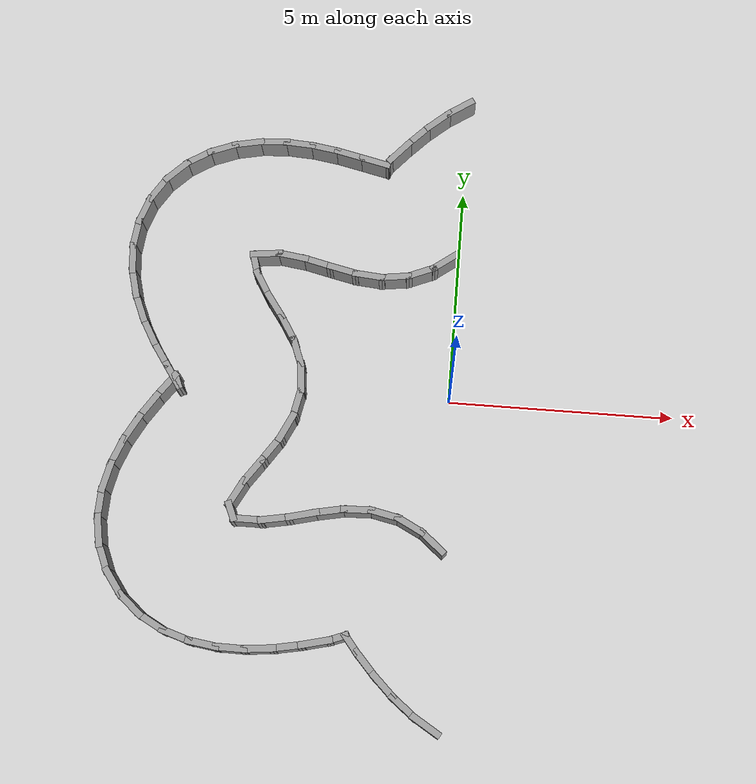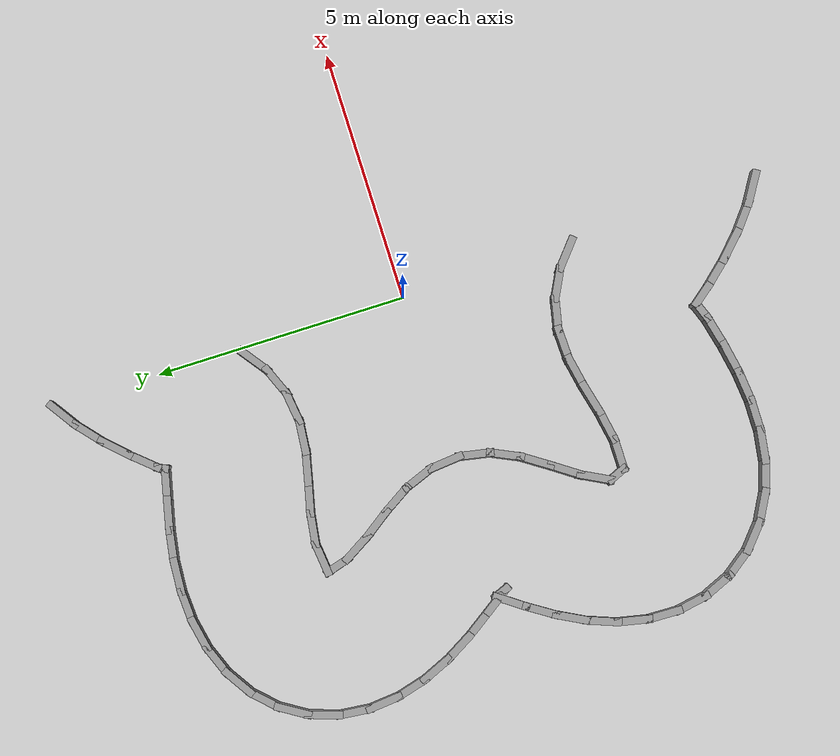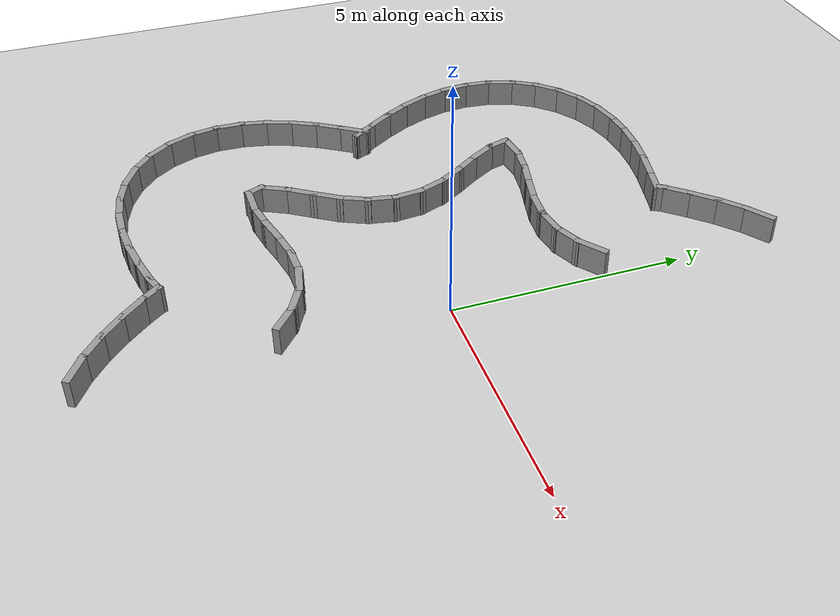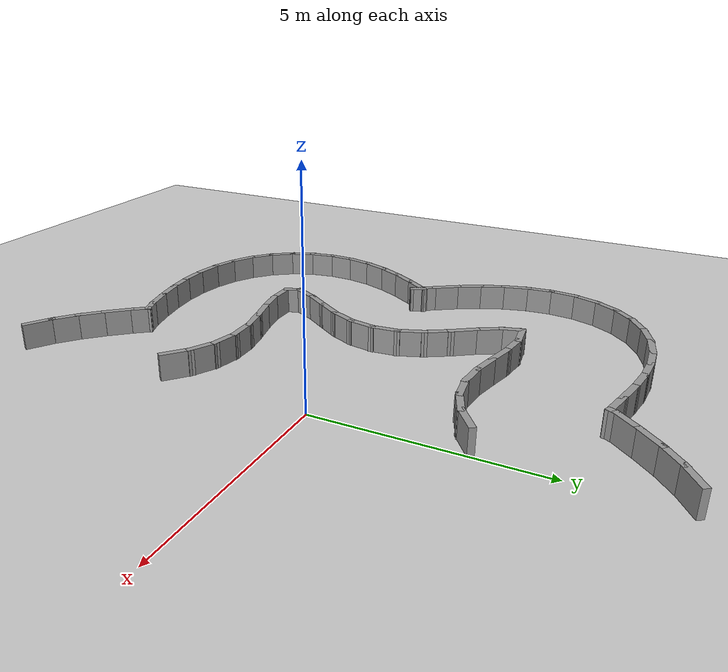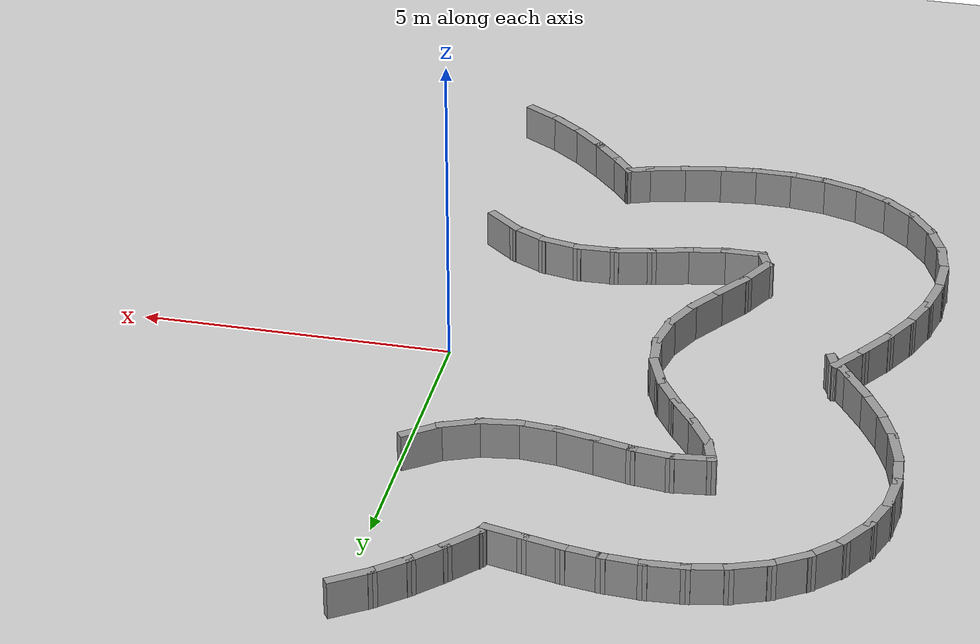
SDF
<sdf version="1.7">
 <world name="default">
  <model name="ground_plane">
   <static>1</static>
   <link name="link">
    <collision name="collision">
     <geometry><plane><normal>0 0 1</normal><size>100 100</size></plane></geometry>
     <surface><friction><ode><mu>100</mu><mu2>50</mu2></ode></friction></surface>
    </collision>
    <visual name="visual">
     <cast_shadows>0</cast_shadows>
     <geometry><plane><normal>0 0 1</normal><size>100 100</size></plane></geometry>
     <material>
      <script><uri>file://media/materials/scripts/gazebo.material</uri><name>Gazebo/Grey</name></script>
     </material>
    </visual>
   </link>
  </model>
  <model name="rand_lobed_02">
   <link name="Wall_16">
    <collision name="Wall_16_Collision">
     <geometry><box><size>0.7488 0.1500 0.6000</size></box></geometry>
     <pose>0 0 0.3000 0 -0 0</pose>
    </collision>
    <visual name="Wall_16_Visual">
     <pose>0 0 0.3000 0 -0 0</pose>
     <geometry><box><size>0.7488 0.1500 0.6000</size></box></geometry>
     <material>
      <script><uri>file://media/materials/scripts/gazebo.material</uri><name>Gazebo/Grey</name></script>
      <ambient>1 1 1 1</ambient>
     </material>
    </visual>
    <pose>-0.3218 3.1370 0 0 -0 -2.50682</pose>
   </link>
   <link name="Wall_17">
    <collision name="Wall_17_Collision">
     <geometry><box><size>0.7483 0.1500 0.6000</size></box></geometry>
     <pose>0 0 0.3000 0 -0 0</pose>
    </collision>
    <visual name="Wall_17_Visual">
     <pose>0 0 0.3000 0 -0 0</pose>
     <geometry><box><size>0.7483 0.1500 0.6000</size></box></geometry>
     <material>
      <script><uri>file://media/materials/scripts/gazebo.material</uri><name>Gazebo/Grey</name></script>
      <ambient>1 1 1 1</ambient>
     </material>
    </visual>
    <pose>-0.8395 2.8456 0 0 -0 -2.75114</pose>
   </link>
   <link name="Wall_18">
    <collision name="Wall_18_Collision">
     <geometry><box><size>0.7484 0.1500 0.6000</size></box></geometry>
     <pose>0 0 0.3000 0 -0 0</pose>
    </collision>
    <visual name="Wall_18_Visual">
     <pose>0 0 0.3000 0 -0 0</pose>
     <geometry><box><size>0.7484 0.1500 0.6000</size></box></geometry>
     <material>
      <script><uri>file://media/materials/scripts/gazebo.material</uri><name>Gazebo/Grey</name></script>
      <ambient>1 1 1 1</ambient>
     </material>
    </visual>
    <pose>-1.4128 2.6932 0 0 -0 -3.01212</pose>
   </link>
   <link name="Wall_19">
    <collision name="Wall_19_Collision">
     <geometry><box><size>0.7491 0.1500 0.6000</size></box></geometry>
     <pose>0 0 0.3000 0 -0 0</pose>
    </collision>
    <visual name="Wall_19_Visual">
     <pose>0 0 0.3000 0 -0 0</pose>
     <geometry><box><size>0.7491 0.1500 0.6000</size></box></geometry>
     <material>
      <script><uri>file://media/materials/scripts/gazebo.material</uri><name>Gazebo/Grey</name></script>
      <ambient>1 1 1 1</ambient>
     </material>
    </visual>
    <pose>-2.0077 2.6823 0 0 -0 3.04875</pose>
   </link>
   <link name="Wall_20">
    <collision name="Wall_20_Collision">
     <geometry><box><size>0.7499 0.1500 0.6000</size></box></geometry>
     <pose>0 0 0.3000 0 -0 0</pose>
    </collision>
    <visual name="Wall_20_Visual">
     <pose>0 0 0.3000 0 -0 0</pose>
     <geometry><box><size>0.7499 0.1500 0.6000</size></box></geometry>
     <material>
      <script><uri>file://media/materials/scripts/gazebo.material</uri><name>Gazebo/Grey</name></script>
      <ambient>1 1 1 1</ambient>
     </material>
    </visual>
    <pose>-2.5986 2.7760 0 0 -0 2.92006</pose>
   </link>
   <link name="Wall_21">
    <collision name="Wall_21_Collision">
     <geometry><box><size>0.7500 0.1500 0.6000</size></box></geometry>
     <pose>0 0 0.3000 0 -0 0</pose>
    </collision>
    <visual name="Wall_21_Visual">
     <pose>0 0 0.3000 0 -0 0</pose>
     <geometry><box><size>0.7500 0.1500 0.6000</size></box></geometry>
     <material>
      <script><uri>file://media/materials/scripts/gazebo.material</uri><name>Gazebo/Grey</name></script>
      <ambient>1 1 1 1</ambient>
     </material>
    </visual>
    <pose>-3.1830 2.9114 0 0 -0 2.90779</pose>
   </link>
   <link name="Wall_22">
    <collision name="Wall_22_Collision">
     <geometry><box><size>0.7495 0.1500 0.6000</size></box></geometry>
     <pose>0 0 0.3000 0 -0 0</pose>
    </collision>
    <visual name="Wall_22_Visual">
     <pose>0 0 0.3000 0 -0 0</pose>
     <geometry><box><size>0.7495 0.1500 0.6000</size></box></geometry>
     <material>
      <script><uri>file://media/materials/scripts/gazebo.material</uri><name>Gazebo/Grey</name></script>
      <ambient>1 1 1 1</ambient>
     </material>
    </visual>
    <pose>-3.7716 3.0230 0 0 -0 3.00070</pose>
   </link>
   <link name="Wall_23">
    <collision name="Wall_23_Collision">
     <geometry><box><size>0.7453 0.1500 0.6000</size></box></geometry>
     <pose>0 0 0.3000 0 -0 0</pose>
    </collision>
    <visual name="Wall_23_Visual">
     <pose>0 0 0.3000 0 -0 0</pose>
     <geometry><box><size>0.7453 0.1500 0.6000</size></box></geometry>
     <material>
      <script><uri>file://media/materials/scripts/gazebo.material</uri><name>Gazebo/Grey</name></script>
      <ambient>1 1 1 1</ambient>
     </material>
    </visual>
    <pose>-4.3642 3.0321 0 0 -0 -3.03064</pose>
   </link>
   <link name="Wall_24">
    <collision name="Wall_24_Collision">
     <geometry><box><size>0.5952 0.1500 0.6000</size></box></geometry>
     <pose>0 0 0.3000 0 -0 0</pose>
    </collision>
    <visual name="Wall_24_Visual">
     <pose>0 0 0.3000 0 -0 0</pose>
     <geometry><box><size>0.5952 0.1500 0.6000</size></box></geometry>
     <material>
      <script><uri>file://media/materials/scripts/gazebo.material</uri><name>Gazebo/Grey</name></script>
      <ambient>1 1 1 1</ambient>
     </material>
    </visual>
    <pose>-4.5961 2.7860 0 0 -0 -1.27937</pose>
   </link>
   <link name="Wall_25">
    <collision name="Wall_25_Collision">
     <geometry><box><size>0.7494 0.1500 0.6000</size></box></geometry>
     <pose>0 0 0.3000 0 -0 0</pose>
    </collision>
    <visual name="Wall_25_Visual">
     <pose>0 0 0.3000 0 -0 0</pose>
     <geometry><box><size>0.7494 0.1500 0.6000</size></box></geometry>
     <material>
      <script><uri>file://media/materials/scripts/gazebo.material</uri><name>Gazebo/Grey</name></script>
      <ambient>1 1 1 1</ambient>
     </material>
    </visual>
    <pose>-4.3782 2.3156 0 0 -0 -1.03138</pose>
   </link>
   <link name="Wall_26">
    <collision name="Wall_26_Collision">
     <geometry><box><size>0.7500 0.1500 0.6000</size></box></geometry>
     <pose>0 0 0.3000 0 -0 0</pose>
    </collision>
    <visual name="Wall_26_Visual">
     <pose>0 0 0.3000 0 -0 0</pose>
     <geometry><box><size>0.7500 0.1500 0.6000</size></box></geometry>
     <material>
      <script><uri>file://media/materials/scripts/gazebo.material</uri><name>Gazebo/Grey</name></script>
      <ambient>1 1 1 1</ambient>
     </material>
    </visual>
    <pose>-4.0508 1.8137 0 0 -0 -0.95438</pose>
   </link>
   <link name="Wall_27">
    <collision name="Wall_27_Collision">
     <geometry><box><size>0.7496 0.1500 0.6000</size></box></geometry>
     <pose>0 0 0.3000 0 -0 0</pose>
    </collision>
    <visual name="Wall_27_Visual">
     <pose>0 0 0.3000 0 -0 0</pose>
     <geometry><box><size>0.7496 0.1500 0.6000</size></box></geometry>
     <material>
      <script><uri>file://media/materials/scripts/gazebo.material</uri><name>Gazebo/Grey</name></script>
      <ambient>1 1 1 1</ambient>
     </material>
    </visual>
    <pose>-3.7194 1.3141 0 0 -0 -1.01584</pose>
   </link>
   <link name="Wall_28">
    <collision name="Wall_28_Collision">
     <geometry><box><size>0.7486 0.1500 0.6000</size></box></geometry>
     <pose>0 0 0.3000 0 -0 0</pose>
    </collision>
    <visual name="Wall_28_Visual">
     <pose>0 0 0.3000 0 -0 0</pose>
     <geometry><box><size>0.7486 0.1500 0.6000</size></box></geometry>
     <material>
      <script><uri>file://media/materials/scripts/gazebo.material</uri><name>Gazebo/Grey</name></script>
      <ambient>1 1 1 1</ambient>
     </material>
    </visual>
    <pose>-3.4545 0.7798 0 0 -0 -1.20536</pose>
   </link>
   <link name="Wall_29">
    <collision name="Wall_29_Collision">
     <geometry><box><size>0.7479 0.1500 0.6000</size></box></geometry>
     <pose>0 0 0.3000 0 -0 0</pose>
    </collision>
    <visual name="Wall_29_Visual">
     <pose>0 0 0.3000 0 -0 0</pose>
     <geometry><box><size>0.7479 0.1500 0.6000</size></box></geometry>
     <material>
      <script><uri>file://media/materials/scripts/gazebo.material</uri><name>Gazebo/Grey</name></script>
      <ambient>1 1 1 1</ambient>
     </material>
    </visual>
    <pose>-3.3183 0.2027 0 0 -0 -1.47272</pose>
   </link>
   <link name="Wall_30">
    <collision name="Wall_30_Collision">
     <geometry><box><size>0.7480 0.1500 0.6000</size></box></geometry>
     <pose>0 0 0.3000 0 -0 0</pose>
    </collision>
    <visual name="Wall_30_Visual">
     <pose>0 0 0.3000 0 -0 0</pose>
     <geometry><box><size>0.7480 0.1500 0.6000</size></box></geometry>
     <material>
      <script><uri>file://media/materials/scripts/gazebo.material</uri><name>Gazebo/Grey</name></script>
      <ambient>1 1 1 1</ambient>
     </material>
    </visual>
    <pose>-3.3446 -0.3886 0 0 -0 -1.75793</pose>
   </link>
   <link name="Wall_31">
    <collision name="Wall_31_Collision">
     <geometry><box><size>0.7489 0.1500 0.6000</size></box></geometry>
     <pose>0 0 0.3000 0 -0 0</pose>
    </collision>
    <visual name="Wall_31_Visual">
     <pose>0 0 0.3000 0 -0 0</pose>
     <geometry><box><size>0.7489 0.1500 0.6000</size></box></geometry>
     <material>
      <script><uri>file://media/materials/scripts/gazebo.material</uri><name>Gazebo/Grey</name></script>
      <ambient>1 1 1 1</ambient>
     </material>
    </visual>
    <pose>-3.5269 -0.9537 0 0 -0 -2.00754</pose>
   </link>
   <link name="Wall_32">
    <collision name="Wall_32_Collision">
     <geometry><box><size>0.7498 0.1500 0.6000</size></box></geometry>
     <pose>0 0 0.3000 0 -0 0</pose>
    </collision>
    <visual name="Wall_32_Visual">
     <pose>0 0 0.3000 0 -0 0</pose>
     <geometry><box><size>0.7498 0.1500 0.6000</size></box></geometry>
     <material>
      <script><uri>file://media/materials/scripts/gazebo.material</uri><name>Gazebo/Grey</name></script>
      <ambient>1 1 1 1</ambient>
     </material>
    </visual>
    <pose>-3.8203 -1.4743 0 0 -0 -2.16019</pose>
   </link>
   <link name="Wall_33">
    <collision name="Wall_33_Collision">
     <geometry><box><size>0.7499 0.1500 0.6000</size></box></geometry>
     <pose>0 0 0.3000 0 -0 0</pose>
    </collision>
    <visual name="Wall_33_Visual">
     <pose>0 0 0.3000 0 -0 0</pose>
     <geometry><box><size>0.7499 0.1500 0.6000</size></box></geometry>
     <material>
      <script><uri>file://media/materials/scripts/gazebo.material</uri><name>Gazebo/Grey</name></script>
      <ambient>1 1 1 1</ambient>
     </material>
    </visual>
    <pose>-4.1581 -1.9700 0 0 -0 -2.17801</pose>
   </link>
   <link name="Wall_34">
    <collision name="Wall_34_Collision">
     <geometry><box><size>0.7488 0.1500 0.6000</size></box></geometry>
     <pose>0 0 0.3000 0 -0 0</pose>
    </collision>
    <visual name="Wall_34_Visual">
     <pose>0 0 0.3000 0 -0 0</pose>
     <geometry><box><size>0.7488 0.1500 0.6000</size></box></geometry>
     <material>
      <script><uri>file://media/materials/scripts/gazebo.material</uri><name>Gazebo/Grey</name></script>
      <ambient>1 1 1 1</ambient>
     </material>
    </visual>
    <pose>-4.4678 -2.4818 0 0 -0 -2.05165</pose>
   </link>
   <link name="Wall_35">
    <collision name="Wall_35_Collision">
     <geometry><box><size>0.4783 0.1500 0.6000</size></box></geometry>
     <pose>0 0 0.3000 0 -0 0</pose>
    </collision>
    <visual name="Wall_35_Visual">
     <pose>0 0 0.3000 0 -0 0</pose>
     <geometry><box><size>0.4783 0.1500 0.6000</size></box></geometry>
     <material>
      <script><uri>file://media/materials/scripts/gazebo.material</uri><name>Gazebo/Grey</name></script>
      <ambient>1 1 1 1</ambient>
     </material>
    </visual>
    <pose>-4.5419 -2.8983 0 0 -0 -1.16822</pose>
   </link>
   <link name="Wall_36">
    <collision name="Wall_36_Collision">
     <geometry><box><size>0.7481 0.1500 0.6000</size></box></geometry>
     <pose>0 0 0.3000 0 -0 0</pose>
    </collision>
    <visual name="Wall_36_Visual">
     <pose>0 0 0.3000 0 -0 0</pose>
     <geometry><box><size>0.7481 0.1500 0.6000</size></box></geometry>
     <material>
      <script><uri>file://media/materials/scripts/gazebo.material</uri><name>Gazebo/Grey</name></script>
      <ambient>1 1 1 1</ambient>
     </material>
    </visual>
    <pose>-4.1786 -3.0488 0 0 -0 0.00166</pose>
   </link>
   <link name="Wall_37">
    <collision name="Wall_37_Collision">
     <geometry><box><size>0.7497 0.1500 0.6000</size></box></geometry>
     <pose>0 0 0.3000 0 -0 0</pose>
    </collision>
    <visual name="Wall_37_Visual">
     <pose>0 0 0.3000 0 -0 0</pose>
     <geometry><box><size>0.7497 0.1500 0.6000</size></box></geometry>
     <material>
      <script><uri>file://media/materials/scripts/gazebo.material</uri><name>Gazebo/Grey</name></script>
      <ambient>1 1 1 1</ambient>
     </material>
    </visual>
    <pose>-3.5846 -2.9942 0 0 -0 0.18162</pose>
   </link>
   <link name="Wall_38">
    <collision name="Wall_38_Collision">
     <geometry><box><size>0.7500 0.1500 0.6000</size></box></geometry>
     <pose>0 0 0.3000 0 -0 0</pose>
    </collision>
    <visual name="Wall_38_Visual">
     <pose>0 0 0.3000 0 -0 0</pose>
     <geometry><box><size>0.7500 0.1500 0.6000</size></box></geometry>
     <material>
      <script><uri>file://media/materials/scripts/gazebo.material</uri><name>Gazebo/Grey</name></script>
      <ambient>1 1 1 1</ambient>
     </material>
    </visual>
    <pose>-2.9984 -2.8681 0 0 -0 0.24187</pose>
   </link>
   <link name="Wall_39">
    <collision name="Wall_39_Collision">
     <geometry><box><size>0.7497 0.1500 0.6000</size></box></geometry>
     <pose>0 0 0.3000 0 -0 0</pose>
    </collision>
    <visual name="Wall_39_Visual">
     <pose>0 0 0.3000 0 -0 0</pose>
     <geometry><box><size>0.7497 0.1500 0.6000</size></box></geometry>
     <material>
      <script><uri>file://media/materials/scripts/gazebo.material</uri><name>Gazebo/Grey</name></script>
      <ambient>1 1 1 1</ambient>
     </material>
    </visual>
    <pose>-2.4129 -2.7387 0 0 -0 0.19341</pose>
   </link>
   <link name="Wall_40">
    <collision name="Wall_40_Collision">
     <geometry><box><size>0.7489 0.1500 0.6000</size></box></geometry>
     <pose>0 0 0.3000 0 -0 0</pose>
    </collision>
    <visual name="Wall_40_Visual">
     <pose>0 0 0.3000 0 -0 0</pose>
     <geometry><box><size>0.7489 0.1500 0.6000</size></box></geometry>
     <material>
      <script><uri>file://media/materials/scripts/gazebo.material</uri><name>Gazebo/Grey</name></script>
      <ambient>1 1 1 1</ambient>
     </material>
    </visual>
    <pose>-1.8193 -2.6720 0 0 -0 0.03029</pose>
   </link>
   <link name="Wall_41">
    <collision name="Wall_41_Collision">
     <geometry><box><size>0.7483 0.1500 0.6000</size></box></geometry>
     <pose>0 0 0.3000 0 -0 0</pose>
    </collision>
    <visual name="Wall_41_Visual">
     <pose>0 0 0.3000 0 -0 0</pose>
     <geometry><box><size>0.7483 0.1500 0.6000</size></box></geometry>
     <material>
      <script><uri>file://media/materials/scripts/gazebo.material</uri><name>Gazebo/Grey</name></script>
      <ambient>1 1 1 1</ambient>
     </material>
    </visual>
    <pose>-1.2275 -2.7254 0 0 -0 -0.21041</pose>
   </link>
   <link name="Wall_42">
    <collision name="Wall_42_Collision">
     <geometry><box><size>0.7484 0.1500 0.6000</size></box></geometry>
     <pose>0 0 0.3000 0 -0 0</pose>
    </collision>
    <visual name="Wall_42_Visual">
     <pose>0 0 0.3000 0 -0 0</pose>
     <geometry><box><size>0.7484 0.1500 0.6000</size></box></geometry>
     <material>
      <script><uri>file://media/materials/scripts/gazebo.material</uri><name>Gazebo/Grey</name></script>
      <ambient>1 1 1 1</ambient>
     </material>
    </visual>
    <pose>-0.6685 -2.9239 0 0 -0 -0.47214</pose>
   </link>
   <link name="Wall_43">
    <collision name="Wall_43_Collision">
     <geometry><box><size>0.7491 0.1500 0.6000</size></box></geometry>
     <pose>0 0 0.3000 0 -0 0</pose>
    </collision>
    <visual name="Wall_43_Visual">
     <pose>0 0 0.3000 0 -0 0</pose>
     <geometry><box><size>0.7491 0.1500 0.6000</size></box></geometry>
     <material>
      <script><uri>file://media/materials/scripts/gazebo.material</uri><name>Gazebo/Grey</name></script>
      <ambient>1 1 1 1</ambient>
     </material>
    </visual>
    <pose>-0.1728 -3.2527 0 0 -0 -0.69901</pose>
   </link>
   <link name="Wall_82">
    <collision name="Wall_82_Collision">
     <geometry><box><size>0.7496 0.1500 0.6000</size></box></geometry>
     <pose>0 0 0.3000 0 -0 0</pose>
    </collision>
    <visual name="Wall_82_Visual">
     <pose>0 0 0.3000 0 -0 0</pose>
     <geometry><box><size>0.7496 0.1500 0.6000</size></box></geometry>
     <material>
      <script><uri>file://media/materials/scripts/gazebo.material</uri><name>Gazebo/Grey</name></script>
      <ambient>1 1 1 1</ambient>
     </material>
    </visual>
    <pose>-0.2195 6.9723 0 0 -0 -2.54758</pose>
   </link>
   <link name="Wall_83">
    <collision name="Wall_83_Collision">
     <geometry><box><size>0.7497 0.1500 0.6000</size></box></geometry>
     <pose>0 0 0.3000 0 -0 0</pose>
    </collision>
    <visual name="Wall_83_Visual">
     <pose>0 0 0.3000 0 -0 0</pose>
     <geometry><box><size>0.7497 0.1500 0.6000</size></box></geometry>
     <material>
      <script><uri>file://media/materials/scripts/gazebo.material</uri><name>Gazebo/Grey</name></script>
      <ambient>1 1 1 1</ambient>
     </material>
    </visual>
    <pose>-0.6953 6.6090 0 0 -0 -2.43151</pose>
   </link>
   <link name="Wall_84">
    <collision name="Wall_84_Collision">
     <geometry><box><size>0.7499 0.1500 0.6000</size></box></geometry>
     <pose>0 0 0.3000 0 -0 0</pose>
    </collision>
    <visual name="Wall_84_Visual">
     <pose>0 0 0.3000 0 -0 0</pose>
     <geometry><box><size>0.7499 0.1500 0.6000</size></box></geometry>
     <material>
      <script><uri>file://media/materials/scripts/gazebo.material</uri><name>Gazebo/Grey</name></script>
      <ambient>1 1 1 1</ambient>
     </material>
    </visual>
    <pose>-1.1317 6.1984 0 0 -0 -2.34160</pose>
   </link>
   <link name="Wall_85">
    <collision name="Wall_85_Collision">
     <geometry><box><size>0.7500 0.1500 0.6000</size></box></geometry>
     <pose>0 0 0.3000 0 -0 0</pose>
    </collision>
    <visual name="Wall_85_Visual">
     <pose>0 0 0.3000 0 -0 0</pose>
     <geometry><box><size>0.7500 0.1500 0.6000</size></box></geometry>
     <material>
      <script><uri>file://media/materials/scripts/gazebo.material</uri><name>Gazebo/Grey</name></script>
      <ambient>1 1 1 1</ambient>
     </material>
    </visual>
    <pose>-1.5391 5.7582 0 0 -0 -2.29342</pose>
   </link>
   <link name="Wall_86">
    <collision name="Wall_86_Collision">
     <geometry><box><size>0.2980 0.1500 0.6000</size></box></geometry>
     <pose>0 0 0.3000 0 -0 0</pose>
    </collision>
    <visual name="Wall_86_Visual">
     <pose>0 0 0.3000 0 -0 0</pose>
     <geometry><box><size>0.2980 0.1500 0.6000</size></box></geometry>
     <material>
      <script><uri>file://media/materials/scripts/gazebo.material</uri><name>Gazebo/Grey</name></script>
      <ambient>1 1 1 1</ambient>
     </material>
    </visual>
    <pose>-1.7710 5.4672 0 0 -0 -2.04046</pose>
   </link>
   <link name="Wall_87">
    <collision name="Wall_87_Collision">
     <geometry><box><size>0.7499 0.1500 0.6000</size></box></geometry>
     <pose>0 0 0.3000 0 -0 0</pose>
    </collision>
    <visual name="Wall_87_Visual">
     <pose>0 0 0.3000 0 -0 0</pose>
     <geometry><box><size>0.7499 0.1500 0.6000</size></box></geometry>
     <material>
      <script><uri>file://media/materials/scripts/gazebo.material</uri><name>Gazebo/Grey</name></script>
      <ambient>1 1 1 1</ambient>
     </material>
    </visual>
    <pose>-2.0965 5.4696 0 0 -0 2.91156</pose>
   </link>
   <link name="Wall_88">
    <collision name="Wall_88_Collision">
     <geometry><box><size>0.7499 0.1500 0.6000</size></box></geometry>
     <pose>0 0 0.3000 0 -0 0</pose>
    </collision>
    <visual name="Wall_88_Visual">
     <pose>0 0 0.3000 0 -0 0</pose>
     <geometry><box><size>0.7499 0.1500 0.6000</size></box></geometry>
     <material>
      <script><uri>file://media/materials/scripts/gazebo.material</uri><name>Gazebo/Grey</name></script>
      <ambient>1 1 1 1</ambient>
     </material>
    </visual>
    <pose>-2.6809 5.6051 0 0 -0 2.91594</pose>
   </link>
   <link name="Wall_89">
    <collision name="Wall_89_Collision">
     <geometry><box><size>0.7498 0.1500 0.6000</size></box></geometry>
     <pose>0 0 0.3000 0 -0 0</pose>
    </collision>
    <visual name="Wall_89_Visual">
     <pose>0 0 0.3000 0 -0 0</pose>
     <geometry><box><size>0.7498 0.1500 0.6000</size></box></geometry>
     <material>
      <script><uri>file://media/materials/scripts/gazebo.material</uri><name>Gazebo/Grey</name></script>
      <ambient>1 1 1 1</ambient>
     </material>
    </visual>
    <pose>-3.2694 5.7198 0 0 -0 2.98198</pose>
   </link>
   <link name="Wall_90">
    <collision name="Wall_90_Collision">
     <geometry><box><size>0.7497 0.1500 0.6000</size></box></geometry>
     <pose>0 0 0.3000 0 -0 0</pose>
    </collision>
    <visual name="Wall_90_Visual">
     <pose>0 0 0.3000 0 -0 0</pose>
     <geometry><box><size>0.7497 0.1500 0.6000</size></box></geometry>
     <material>
      <script><uri>file://media/materials/scripts/gazebo.material</uri><name>Gazebo/Grey</name></script>
      <ambient>1 1 1 1</ambient>
     </material>
    </visual>
    <pose>-3.8647 5.7869 0 0 -0 3.07704</pose>
   </link>
   <link name="Wall_91">
    <collision name="Wall_91_Collision">
     <geometry><box><size>0.7496 0.1500 0.6000</size></box></geometry>
     <pose>0 0 0.3000 0 -0 0</pose>
    </collision>
    <visual name="Wall_91_Visual">
     <pose>0 0 0.3000 0 -0 0</pose>
     <geometry><box><size>0.7496 0.1500 0.6000</size></box></geometry>
     <material>
      <script><uri>file://media/materials/scripts/gazebo.material</uri><name>Gazebo/Grey</name></script>
      <ambient>1 1 1 1</ambient>
     </material>
    </visual>
    <pose>-4.4633 5.7897 0 0 -0 -3.08653</pose>
   </link>
   <link name="Wall_92">
    <collision name="Wall_92_Collision">
     <geometry><box><size>0.7494 0.1500 0.6000</size></box></geometry>
     <pose>0 0 0.3000 0 -0 0</pose>
    </collision>
    <visual name="Wall_92_Visual">
     <pose>0 0 0.3000 0 -0 0</pose>
     <geometry><box><size>0.7494 0.1500 0.6000</size></box></geometry>
     <material>
      <script><uri>file://media/materials/scripts/gazebo.material</uri><name>Gazebo/Grey</name></script>
      <ambient>1 1 1 1</ambient>
     </material>
    </visual>
    <pose>-5.0563 5.7135 0 0 -0 -2.94107</pose>
   </link>
   <link name="Wall_93">
    <collision name="Wall_93_Collision">
     <geometry><box><size>0.7491 0.1500 0.6000</size></box></geometry>
     <pose>0 0 0.3000 0 -0 0</pose>
    </collision>
    <visual name="Wall_93_Visual">
     <pose>0 0 0.3000 0 -0 0</pose>
     <geometry><box><size>0.7491 0.1500 0.6000</size></box></geometry>
     <material>
      <script><uri>file://media/materials/scripts/gazebo.material</uri><name>Gazebo/Grey</name></script>
      <ambient>1 1 1 1</ambient>
     </material>
    </visual>
    <pose>-5.6290 5.5448 0 0 -0 -2.76908</pose>
   </link>
   <link name="Wall_94">
    <collision name="Wall_94_Collision">
     <geometry><box><size>0.7489 0.1500 0.6000</size></box></geometry>
     <pose>0 0 0.3000 0 -0 0</pose>
    </collision>
    <visual name="Wall_94_Visual">
     <pose>0 0 0.3000 0 -0 0</pose>
     <geometry><box><size>0.7489 0.1500 0.6000</size></box></geometry>
     <material>
      <script><uri>file://media/materials/scripts/gazebo.material</uri><name>Gazebo/Grey</name></script>
      <ambient>1 1 1 1</ambient>
     </material>
    </visual>
    <pose>-6.1600 5.2741 0 0 -0 -2.57132</pose>
   </link>
   <link name="Wall_95">
    <collision name="Wall_95_Collision">
     <geometry><box><size>0.7487 0.1500 0.6000</size></box></geometry>
     <pose>0 0 0.3000 0 -0 0</pose>
    </collision>
    <visual name="Wall_95_Visual">
     <pose>0 0 0.3000 0 -0 0</pose>
     <geometry><box><size>0.7487 0.1500 0.6000</size></box></geometry>
     <material>
      <script><uri>file://media/materials/scripts/gazebo.material</uri><name>Gazebo/Grey</name></script>
      <ambient>1 1 1 1</ambient>
     </material>
    </visual>
    <pose>-6.6232 4.9002 0 0 -0 -2.35368</pose>
   </link>
   <link name="Wall_96">
    <collision name="Wall_96_Collision">
     <geometry><box><size>0.7486 0.1500 0.6000</size></box></geometry>
     <pose>0 0 0.3000 0 -0 0</pose>
    </collision>
    <visual name="Wall_96_Visual">
     <pose>0 0 0.3000 0 -0 0</pose>
     <geometry><box><size>0.7486 0.1500 0.6000</size></box></geometry>
     <material>
      <script><uri>file://media/materials/scripts/gazebo.material</uri><name>Gazebo/Grey</name></script>
      <ambient>1 1 1 1</ambient>
     </material>
    </visual>
    <pose>-6.9916 4.4333 0 0 -0 -2.12376</pose>
   </link>
   <link name="Wall_97">
    <collision name="Wall_97_Collision">
     <geometry><box><size>0.7487 0.1500 0.6000</size></box></geometry>
     <pose>0 0 0.3000 0 -0 0</pose>
    </collision>
    <visual name="Wall_97_Visual">
     <pose>0 0 0.3000 0 -0 0</pose>
     <geometry><box><size>0.7487 0.1500 0.6000</size></box></geometry>
     <material>
      <script><uri>file://media/materials/scripts/gazebo.material</uri><name>Gazebo/Grey</name></script>
      <ambient>1 1 1 1</ambient>
     </material>
    </visual>
    <pose>-7.2441 3.8948 0 0 -0 -1.89463</pose>
   </link>
   <link name="Wall_98">
    <collision name="Wall_98_Collision">
     <geometry><box><size>0.7489 0.1500 0.6000</size></box></geometry>
     <pose>0 0 0.3000 0 -0 0</pose>
    </collision>
    <visual name="Wall_98_Visual">
     <pose>0 0 0.3000 0 -0 0</pose>
     <geometry><box><size>0.7489 0.1500 0.6000</size></box></geometry>
     <material>
      <script><uri>file://media/materials/scripts/gazebo.material</uri><name>Gazebo/Grey</name></script>
      <ambient>1 1 1 1</ambient>
     </material>
    </visual>
    <pose>-7.3706 3.3132 0 0 -0 -1.67553</pose>
   </link>
   <link name="Wall_99">
    <collision name="Wall_99_Collision">
     <geometry><box><size>0.7491 0.1500 0.6000</size></box></geometry>
     <pose>0 0 0.3000 0 -0 0</pose>
    </collision>
    <visual name="Wall_99_Visual">
     <pose>0 0 0.3000 0 -0 0</pose>
     <geometry><box><size>0.7491 0.1500 0.6000</size></box></geometry>
     <material>
      <script><uri>file://media/materials/scripts/gazebo.material</uri><name>Gazebo/Grey</name></script>
      <ambient>1 1 1 1</ambient>
     </material>
    </visual>
    <pose>-7.3739 2.7171 0 0 -0 -1.47720</pose>
   </link>
   <link name="Wall_100">
    <collision name="Wall_100_Collision">
     <geometry><box><size>0.7494 0.1500 0.6000</size></box></geometry>
     <pose>0 0 0.3000 0 -0 0</pose>
    </collision>
    <visual name="Wall_100_Visual">
     <pose>0 0 0.3000 0 -0 0</pose>
     <geometry><box><size>0.7494 0.1500 0.6000</size></box></geometry>
     <material>
      <script><uri>file://media/materials/scripts/gazebo.material</uri><name>Gazebo/Grey</name></script>
      <ambient>1 1 1 1</ambient>
     </material>
    </visual>
    <pose>-7.2674 2.1296 0 0 -0 -1.30574</pose>
   </link>
   <link name="Wall_101">
    <collision name="Wall_101_Collision">
     <geometry><box><size>0.7496 0.1500 0.6000</size></box></geometry>
     <pose>0 0 0.3000 0 -0 0</pose>
    </collision>
    <visual name="Wall_101_Visual">
     <pose>0 0 0.3000 0 -0 0</pose>
     <geometry><box><size>0.7496 0.1500 0.6000</size></box></geometry>
     <material>
      <script><uri>file://media/materials/scripts/gazebo.material</uri><name>Gazebo/Grey</name></script>
      <ambient>1 1 1 1</ambient>
     </material>
    </visual>
    <pose>-7.0701 1.5652 0 0 -0 -1.16320</pose>
   </link>
   <link name="Wall_102">
    <collision name="Wall_102_Collision">
     <geometry><box><size>0.7498 0.1500 0.6000</size></box></geometry>
     <pose>0 0 0.3000 0 -0 0</pose>
    </collision>
    <visual name="Wall_102_Visual">
     <pose>0 0 0.3000 0 -0 0</pose>
     <geometry><box><size>0.7498 0.1500 0.6000</size></box></geometry>
     <material>
      <script><uri>file://media/materials/scripts/gazebo.material</uri><name>Gazebo/Grey</name></script>
      <ambient>1 1 1 1</ambient>
     </material>
    </visual>
    <pose>-6.8022 1.0297 0 0 -0 -1.05060</pose>
   </link>
   <link name="Wall_103">
    <collision name="Wall_103_Collision">
     <geometry><box><size>0.7499 0.1500 0.6000</size></box></geometry>
     <pose>0 0 0.3000 0 -0 0</pose>
    </collision>
    <visual name="Wall_103_Visual">
     <pose>0 0 0.3000 0 -0 0</pose>
     <geometry><box><size>0.7499 0.1500 0.6000</size></box></geometry>
     <material>
      <script><uri>file://media/materials/scripts/gazebo.material</uri><name>Gazebo/Grey</name></script>
      <ambient>1 1 1 1</ambient>
     </material>
    </visual>
    <pose>-6.4843 0.5216 0 0 -0 -0.97293</pose>
   </link>
   <link name="Wall_104">
    <collision name="Wall_104_Collision">
     <geometry><box><size>0.7156 0.1500 0.6000</size></box></geometry>
     <pose>0 0 0.3000 0 -0 0</pose>
    </collision>
    <visual name="Wall_104_Visual">
     <pose>0 0 0.3000 0 -0 0</pose>
     <geometry><box><size>0.7156 0.1500 0.6000</size></box></geometry>
     <material>
      <script><uri>file://media/materials/scripts/gazebo.material</uri><name>Gazebo/Grey</name></script>
      <ambient>1 1 1 1</ambient>
     </material>
    </visual>
    <pose>-6.1547 0.0410 0 0 -0 -0.96645</pose>
   </link>
   <link name="Wall_105">
    <collision name="Wall_105_Collision">
     <geometry><box><size>0.4048 0.1500 0.6000</size></box></geometry>
     <pose>0 0 0.3000 0 -0 0</pose>
    </collision>
    <visual name="Wall_105_Visual">
     <pose>0 0 0.3000 0 -0 0</pose>
     <geometry><box><size>0.4048 0.1500 0.6000</size></box></geometry>
     <material>
      <script><uri>file://media/materials/scripts/gazebo.material</uri><name>Gazebo/Grey</name></script>
      <ambient>1 1 1 1</ambient>
     </material>
    </visual>
    <pose>-6.0419 -0.0737 0 0 -0 1.95631</pose>
   </link>
   <link name="Wall_106">
    <collision name="Wall_106_Collision">
     <geometry><box><size>0.7500 0.1500 0.6000</size></box></geometry>
     <pose>0 0 0.3000 0 -0 0</pose>
    </collision>
    <visual name="Wall_106_Visual">
     <pose>0 0 0.3000 0 -0 0</pose>
     <geometry><box><size>0.7500 0.1500 0.6000</size></box></geometry>
     <material>
      <script><uri>file://media/materials/scripts/gazebo.material</uri><name>Gazebo/Grey</name></script>
      <ambient>1 1 1 1</ambient>
     </material>
    </visual>
    <pose>-6.2633 -0.2005 0 0 -0 -2.18718</pose>
   </link>
   <link name="Wall_107">
    <collision name="Wall_107_Collision">
     <geometry><box><size>0.7499 0.1500 0.6000</size></box></geometry>
     <pose>0 0 0.3000 0 -0 0</pose>
    </collision>
    <visual name="Wall_107_Visual">
     <pose>0 0 0.3000 0 -0 0</pose>
     <geometry><box><size>0.7499 0.1500 0.6000</size></box></geometry>
     <material>
      <script><uri>file://media/materials/scripts/gazebo.material</uri><name>Gazebo/Grey</name></script>
      <ambient>1 1 1 1</ambient>
     </material>
    </visual>
    <pose>-6.5999 -0.6969 0 0 -0 -2.14631</pose>
   </link>
   <link name="Wall_108">
    <collision name="Wall_108_Collision">
     <geometry><box><size>0.7497 0.1500 0.6000</size></box></geometry>
     <pose>0 0 0.3000 0 -0 0</pose>
    </collision>
    <visual name="Wall_108_Visual">
     <pose>0 0 0.3000 0 -0 0</pose>
     <geometry><box><size>0.7497 0.1500 0.6000</size></box></geometry>
     <material>
      <script><uri>file://media/materials/scripts/gazebo.material</uri><name>Gazebo/Grey</name></script>
      <ambient>1 1 1 1</ambient>
     </material>
    </visual>
    <pose>-6.9028 -1.2139 0 0 -0 -2.05512</pose>
   </link>
   <link name="Wall_109">
    <collision name="Wall_109_Collision">
     <geometry><box><size>0.7495 0.1500 0.6000</size></box></geometry>
     <pose>0 0 0.3000 0 -0 0</pose>
    </collision>
    <visual name="Wall_109_Visual">
     <pose>0 0 0.3000 0 -0 0</pose>
     <geometry><box><size>0.7495 0.1500 0.6000</size></box></geometry>
     <material>
      <script><uri>file://media/materials/scripts/gazebo.material</uri><name>Gazebo/Grey</name></script>
      <ambient>1 1 1 1</ambient>
     </material>
    </visual>
    <pose>-7.1483 -1.7597 0 0 -0 -1.93178</pose>
   </link>
   <link name="Wall_110">
    <collision name="Wall_110_Collision">
     <geometry><box><size>0.7493 0.1500 0.6000</size></box></geometry>
     <pose>0 0 0.3000 0 -0 0</pose>
    </collision>
    <visual name="Wall_110_Visual">
     <pose>0 0 0.3000 0 -0 0</pose>
     <geometry><box><size>0.7493 0.1500 0.6000</size></box></geometry>
     <material>
      <script><uri>file://media/materials/scripts/gazebo.material</uri><name>Gazebo/Grey</name></script>
      <ambient>1 1 1 1</ambient>
     </material>
    </visual>
    <pose>-7.3161 -2.3333 0 0 -0 -1.77902</pose>
   </link>
   <link name="Wall_111">
    <collision name="Wall_111_Collision">
     <geometry><box><size>0.7490 0.1500 0.6000</size></box></geometry>
     <pose>0 0 0.3000 0 -0 0</pose>
    </collision>
    <visual name="Wall_111_Visual">
     <pose>0 0 0.3000 0 -0 0</pose>
     <geometry><box><size>0.7490 0.1500 0.6000</size></box></geometry>
     <material>
      <script><uri>file://media/materials/scripts/gazebo.material</uri><name>Gazebo/Grey</name></script>
      <ambient>1 1 1 1</ambient>
     </material>
    </visual>
    <pose>-7.3860 -2.9259 0 0 -0 -1.59757</pose>
   </link>
   <link name="Wall_112">
    <collision name="Wall_112_Collision">
     <geometry><box><size>0.7488 0.1500 0.6000</size></box></geometry>
     <pose>0 0 0.3000 0 -0 0</pose>
    </collision>
    <visual name="Wall_112_Visual">
     <pose>0 0 0.3000 0 -0 0</pose>
     <geometry><box><size>0.7488 0.1500 0.6000</size></box></geometry>
     <material>
      <script><uri>file://media/materials/scripts/gazebo.material</uri><name>Gazebo/Grey</name></script>
      <ambient>1 1 1 1</ambient>
     </material>
    </visual>
    <pose>-7.3406 -3.5199 0 0 -0 -1.39127</pose>
   </link>
   <link name="Wall_113">
    <collision name="Wall_113_Collision">
     <geometry><box><size>0.7487 0.1500 0.6000</size></box></geometry>
     <pose>0 0 0.3000 0 -0 0</pose>
    </collision>
    <visual name="Wall_113_Visual">
     <pose>0 0 0.3000 0 -0 0</pose>
     <geometry><box><size>0.7487 0.1500 0.6000</size></box></geometry>
     <material>
      <script><uri>file://media/materials/scripts/gazebo.material</uri><name>Gazebo/Grey</name></script>
      <ambient>1 1 1 1</ambient>
     </material>
    </visual>
    <pose>-7.1697 -4.0898 0 0 -0 -1.16765</pose>
   </link>
   <link name="Wall_114">
    <collision name="Wall_114_Collision">
     <geometry><box><size>0.7487 0.1500 0.6000</size></box></geometry>
     <pose>0 0 0.3000 0 -0 0</pose>
    </collision>
    <visual name="Wall_114_Visual">
     <pose>0 0 0.3000 0 -0 0</pose>
     <geometry><box><size>0.7487 0.1500 0.6000</size></box></geometry>
     <material>
      <script><uri>file://media/materials/scripts/gazebo.material</uri><name>Gazebo/Grey</name></script>
      <ambient>1 1 1 1</ambient>
     </material>
    </visual>
    <pose>-6.8749 -4.6063 0 0 -0 -0.93651</pose>
   </link>
   <link name="Wall_115">
    <collision name="Wall_115_Collision">
     <geometry><box><size>0.7488 0.1500 0.6000</size></box></geometry>
     <pose>0 0 0.3000 0 -0 0</pose>
    </collision>
    <visual name="Wall_115_Visual">
     <pose>0 0 0.3000 0 -0 0</pose>
     <geometry><box><size>0.7488 0.1500 0.6000</size></box></geometry>
     <material>
      <script><uri>file://media/materials/scripts/gazebo.material</uri><name>Gazebo/Grey</name></script>
      <ambient>1 1 1 1</ambient>
     </material>
    </visual>
    <pose>-6.4705 -5.0425 0 0 -0 -0.71013</pose>
   </link>
   <link name="Wall_116">
    <collision name="Wall_116_Collision">
     <geometry><box><size>0.7490 0.1500 0.6000</size></box></geometry>
     <pose>0 0 0.3000 0 -0 0</pose>
    </collision>
    <visual name="Wall_116_Visual">
     <pose>0 0 0.3000 0 -0 0</pose>
     <geometry><box><size>0.7490 0.1500 0.6000</size></box></geometry>
     <material>
      <script><uri>file://media/materials/scripts/gazebo.material</uri><name>Gazebo/Grey</name></script>
      <ambient>1 1 1 1</ambient>
     </material>
    </visual>
    <pose>-5.9804 -5.3808 0 0 -0 -0.49827</pose>
   </link>
   <link name="Wall_117">
    <collision name="Wall_117_Collision">
     <geometry><box><size>0.7492 0.1500 0.6000</size></box></geometry>
     <pose>0 0 0.3000 0 -0 0</pose>
    </collision>
    <visual name="Wall_117_Visual">
     <pose>0 0 0.3000 0 -0 0</pose>
     <geometry><box><size>0.7492 0.1500 0.6000</size></box></geometry>
     <material>
      <script><uri>file://media/materials/scripts/gazebo.material</uri><name>Gazebo/Grey</name></script>
      <ambient>1 1 1 1</ambient>
     </material>
    </visual>
    <pose>-5.4319 -5.6152 0 0 -0 -0.30924</pose>
   </link>
   <link name="Wall_118">
    <collision name="Wall_118_Collision">
     <geometry><box><size>0.7494 0.1500 0.6000</size></box></geometry>
     <pose>0 0 0.3000 0 -0 0</pose>
    </collision>
    <visual name="Wall_118_Visual">
     <pose>0 0 0.3000 0 -0 0</pose>
     <geometry><box><size>0.7494 0.1500 0.6000</size></box></geometry>
     <material>
      <script><uri>file://media/materials/scripts/gazebo.material</uri><name>Gazebo/Grey</name></script>
      <ambient>1 1 1 1</ambient>
     </material>
    </visual>
    <pose>-4.8500 -5.7501 0 0 -0 -0.14660</pose>
   </link>
   <link name="Wall_119">
    <collision name="Wall_119_Collision">
     <geometry><box><size>0.7496 0.1500 0.6000</size></box></geometry>
     <pose>0 0 0.3000 0 -0 0</pose>
    </collision>
    <visual name="Wall_119_Visual">
     <pose>0 0 0.3000 0 -0 0</pose>
     <geometry><box><size>0.7496 0.1500 0.6000</size></box></geometry>
     <material>
      <script><uri>file://media/materials/scripts/gazebo.material</uri><name>Gazebo/Grey</name></script>
      <ambient>1 1 1 1</ambient>
     </material>
    </visual>
    <pose>-4.2537 -5.7970 0 0 -0 -0.01024</pose>
   </link>
   <link name="Wall_120">
    <collision name="Wall_120_Collision">
     <geometry><box><size>0.7498 0.1500 0.6000</size></box></geometry>
     <pose>0 0 0.3000 0 -0 0</pose>
    </collision>
    <visual name="Wall_120_Visual">
     <pose>0 0 0.3000 0 -0 0</pose>
     <geometry><box><size>0.7498 0.1500 0.6000</size></box></geometry>
     <material>
      <script><uri>file://media/materials/scripts/gazebo.material</uri><name>Gazebo/Grey</name></script>
      <ambient>1 1 1 1</ambient>
     </material>
    </visual>
    <pose>-3.6556 -5.7699 0 0 -0 0.10072</pose>
   </link>
   <link name="Wall_121">
    <collision name="Wall_121_Collision">
     <geometry><box><size>0.7499 0.1500 0.6000</size></box></geometry>
     <pose>0 0 0.3000 0 -0 0</pose>
    </collision>
    <visual name="Wall_121_Visual">
     <pose>0 0 0.3000 0 -0 0</pose>
     <geometry><box><size>0.7499 0.1500 0.6000</size></box></geometry>
     <material>
      <script><uri>file://media/materials/scripts/gazebo.material</uri><name>Gazebo/Grey</name></script>
      <ambient>1 1 1 1</ambient>
     </material>
    </visual>
    <pose>-3.0625 -5.6841 0 0 -0 0.18654</pose>
   </link>
   <link name="Wall_122">
    <collision name="Wall_122_Collision">
     <geometry><box><size>0.7500 0.1500 0.6000</size></box></geometry>
     <pose>0 0 0.3000 0 -0 0</pose>
    </collision>
    <visual name="Wall_122_Visual">
     <pose>0 0 0.3000 0 -0 0</pose>
     <geometry><box><size>0.7500 0.1500 0.6000</size></box></geometry>
     <material>
      <script><uri>file://media/materials/scripts/gazebo.material</uri><name>Gazebo/Grey</name></script>
      <ambient>1 1 1 1</ambient>
     </material>
    </visual>
    <pose>-2.4763 -5.5576 0 0 -0 0.23853</pose>
   </link>
   <link name="Wall_123">
    <collision name="Wall_123_Collision">
     <geometry><box><size>0.5003 0.1500 0.6000</size></box></geometry>
     <pose>0 0 0.3000 0 -0 0</pose>
    </collision>
    <visual name="Wall_123_Visual">
     <pose>0 0 0.3000 0 -0 0</pose>
     <geometry><box><size>0.5003 0.1500 0.6000</size></box></geometry>
     <material>
      <script><uri>file://media/materials/scripts/gazebo.material</uri><name>Gazebo/Grey</name></script>
      <ambient>1 1 1 1</ambient>
     </material>
    </visual>
    <pose>-2.0205 -5.4260 0 0 -0 0.35422</pose>
   </link>
   <link name="Wall_124">
    <collision name="Wall_124_Collision">
     <geometry><box><size>0.5652 0.1500 0.6000</size></box></geometry>
     <pose>0 0 0.3000 0 -0 0</pose>
    </collision>
    <visual name="Wall_124_Visual">
     <pose>0 0 0.3000 0 -0 0</pose>
     <geometry><box><size>0.5652 0.1500 0.6000</size></box></geometry>
     <material>
      <script><uri>file://media/materials/scripts/gazebo.material</uri><name>Gazebo/Grey</name></script>
      <ambient>1 1 1 1</ambient>
     </material>
    </visual>
    <pose>-1.7276 -5.5282 0 0 -0 -0.90242</pose>
   </link>
   <link name="Wall_125">
    <collision name="Wall_125_Collision">
     <geometry><box><size>0.7500 0.1500 0.6000</size></box></geometry>
     <pose>0 0 0.3000 0 -0 0</pose>
    </collision>
    <visual name="Wall_125_Visual">
     <pose>0 0 0.3000 0 -0 0</pose>
     <geometry><box><size>0.7500 0.1500 0.6000</size></box></geometry>
     <material>
      <script><uri>file://media/materials/scripts/gazebo.material</uri><name>Gazebo/Grey</name></script>
      <ambient>1 1 1 1</ambient>
     </material>
    </visual>
    <pose>-1.3984 -5.9143 0 0 -0 -0.83871</pose>
   </link>
   <link name="Wall_126">
    <collision name="Wall_126_Collision">
     <geometry><box><size>0.7498 0.1500 0.6000</size></box></geometry>
     <pose>0 0 0.3000 0 -0 0</pose>
    </collision>
    <visual name="Wall_126_Visual">
     <pose>0 0 0.3000 0 -0 0</pose>
     <geometry><box><size>0.7498 0.1500 0.6000</size></box></geometry>
     <material>
      <script><uri>file://media/materials/scripts/gazebo.material</uri><name>Gazebo/Grey</name></script>
      <ambient>1 1 1 1</ambient>
     </material>
    </visual>
    <pose>-0.9830 -6.3466 0 0 -0 -0.77189</pose>
   </link>
   <link name="Wall_127">
    <collision name="Wall_127_Collision">
     <geometry><box><size>0.7497 0.1500 0.6000</size></box></geometry>
     <pose>0 0 0.3000 0 -0 0</pose>
    </collision>
    <visual name="Wall_127_Visual">
     <pose>0 0 0.3000 0 -0 0</pose>
     <geometry><box><size>0.7497 0.1500 0.6000</size></box></geometry>
     <material>
      <script><uri>file://media/materials/scripts/gazebo.material</uri><name>Gazebo/Grey</name></script>
      <ambient>1 1 1 1</ambient>
     </material>
    </visual>
    <pose>-0.5335 -6.7424 0 0 -0 -0.67215</pose>
   </link>
   <link name="Wall_128">
    <collision name="Wall_128_Collision">
     <geometry><box><size>0.7495 0.1500 0.6000</size></box></geometry>
     <pose>0 0 0.3000 0 -0 0</pose>
    </collision>
    <visual name="Wall_128_Visual">
     <pose>0 0 0.3000 0 -0 0</pose>
     <geometry><box><size>0.7495 0.1500 0.6000</size></box></geometry>
     <material>
      <script><uri>file://media/materials/scripts/gazebo.material</uri><name>Gazebo/Grey</name></script>
      <ambient>1 1 1 1</ambient>
     </material>
    </visual>
    <pose>-0.0429 -7.0853 0 0 -0 -0.54792</pose>
   </link>
   <static>1</static>
  </model>
 </world>
</sdf>
